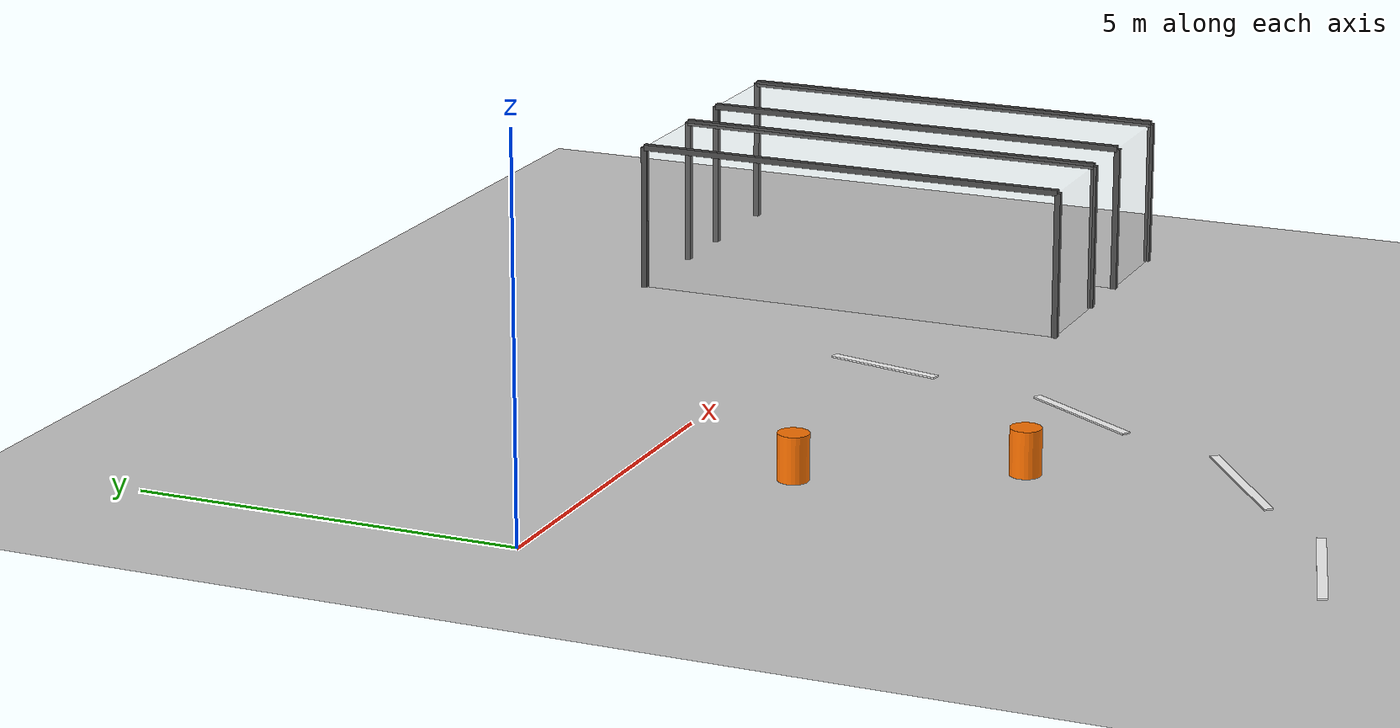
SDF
<sdf version="1.8">
 <world name="pioneer_world">
  <model name="ground_plane">
   <static>true</static>
   <link name="link">
    <collision name="collision"><geometry><plane><normal>0 0 1</normal></plane></geometry></collision>
    <visual name="visual">
     <geometry><plane><normal>0 0 1</normal><size>100 100</size></plane></geometry>
     <material>
      <ambient>0.8 0.8 0.8 1</ambient>
      <diffuse>0.8 0.8 0.8 1</diffuse>
      <specular>0.8 0.8 0.8 1</specular>
     </material>
    </visual>
   </link>
  </model>
  <model name="oval_line_6">
   <static>true</static>
   <pose>8.1 -1.4 0.02 0 0 -1.79</pose>
   <link name="link">
    <visual name="visual">
     <geometry><box><size>1.6 0.12 0.02</size></box></geometry>
     <material><ambient>1 1 1 1</ambient><diffuse>1 1 1 1</diffuse><specular>0.2 0.2 0.2 1</specular></material>
    </visual>
   </link>
  </model>
  <model name="oval_line_7">
   <static>true</static>
   <pose>7.2 -4.4 0.02 0 0 -2.14</pose>
   <link name="link">
    <visual name="visual">
     <geometry><box><size>1.8 0.12 0.02</size></box></geometry>
     <material><ambient>1 1 1 1</ambient><diffuse>1 1 1 1</diffuse><specular>0.2 0.2 0.2 1</specular></material>
    </visual>
   </link>
  </model>
  <model name="oval_line_8">
   <static>true</static>
   <pose>5.5 -7.0 0.02 0 0 -2.52</pose>
   <link name="link">
    <visual name="visual">
     <geometry><box><size>2.0 0.12 0.02</size></box></geometry>
     <material><ambient>1 1 1 1</ambient><diffuse>1 1 1 1</diffuse><specular>0.2 0.2 0.2 1</specular></material>
    </visual>
   </link>
  </model>
  <model name="oval_line_9">
   <static>true</static>
   <pose>3.0 -8.7 0.02 0 0 -2.86</pose>
   <link name="link">
    <visual name="visual">
     <geometry><box><size>2.0 0.12 0.02</size></box></geometry>
     <material><ambient>1 1 1 1</ambient><diffuse>1 1 1 1</diffuse><specular>0.2 0.2 0.2 1</specular></material>
    </visual>
   </link>
  </model>
  <model name="cone_3">
   <static>true</static>
   <pose>3.5 -2 0.3 0 0 0</pose>
   <link name="link">
    <visual name="visual">
     <geometry><cylinder><radius>0.2</radius><length>0.6</length></cylinder></geometry>
     <material>
      <ambient>1.0 0.45 0.0 1</ambient>
      <diffuse>1.0 0.45 0.0 1</diffuse>
      <specular>0.2 0.2 0.2 1</specular>
     </material>
    </visual>
    <collision name="collision">
     <geometry><cylinder><radius>0.2</radius><length>0.6</length></cylinder></geometry>
    </collision>
   </link>
  </model>
  <model name="cone_9">
   <static>true</static>
   <pose>4.8 -4.5 0.3 0 0 0</pose>
   <link name="link">
    <visual name="visual">
     <geometry><cylinder><radius>0.2</radius><length>0.6</length></cylinder></geometry>
     <material>
      <ambient>1.0 0.45 0.0 1</ambient>
      <diffuse>1.0 0.45 0.0 1</diffuse>
      <specular>0.2 0.2 0.2 1</specular>
     </material>
    </visual>
    <collision name="collision">
     <geometry><cylinder><radius>0.2</radius><length>0.6</length></cylinder></geometry>
    </collision>
   </link>
  </model>
  <model name="batting_cage_1">
   <static>true</static>
   <pose>11 0 0 0 0 0</pose>
   <link name="link">
    <visual name="lane_visual">
     <pose>0 0 1.0 0 0 0</pose>
     <geometry><box><size>1.5 6.0 2.0</size></box></geometry>
     <material><ambient>0.7 0.7 0.7 0.15</ambient><diffuse>0.7 0.7 0.7 0.15</diffuse></material>
    </visual>
    <visual name="post_front_left">
     <pose>-0.75 3.0 1.0 0 0 0</pose>
     <geometry><box><size>0.08 0.08 2.0</size></box></geometry>
     <material><ambient>0.3 0.3 0.3 1</ambient><diffuse>0.3 0.3 0.3 1</diffuse></material>
    </visual>
    <visual name="post_front_right">
     <pose>0.75 3.0 1.0 0 0 0</pose>
     <geometry><box><size>0.08 0.08 2.0</size></box></geometry>
     <material><ambient>0.3 0.3 0.3 1</ambient><diffuse>0.3 0.3 0.3 1</diffuse></material>
    </visual>
    <visual name="post_back_left">
     <pose>-0.75 -3.0 1.0 0 0 0</pose>
     <geometry><box><size>0.08 0.08 2.0</size></box></geometry>
     <material><ambient>0.3 0.3 0.3 1</ambient><diffuse>0.3 0.3 0.3 1</diffuse></material>
    </visual>
    <visual name="post_back_right">
     <pose>0.75 -3.0 1.0 0 0 0</pose>
     <geometry><box><size>0.08 0.08 2.0</size></box></geometry>
     <material><ambient>0.3 0.3 0.3 1</ambient><diffuse>0.3 0.3 0.3 1</diffuse></material>
    </visual>
    <visual name="top_bar_left">
     <pose>-0.75 0 2.0 0 0 0</pose>
     <geometry><box><size>0.08 6.0 0.08</size></box></geometry>
     <material><ambient>0.3 0.3 0.3 1</ambient><diffuse>0.3 0.3 0.3 1</diffuse></material>
    </visual>
    <visual name="top_bar_right">
     <pose>0.75 0 2.0 0 0 0</pose>
     <geometry><box><size>0.08 6.0 0.08</size></box></geometry>
     <material><ambient>0.3 0.3 0.3 1</ambient><diffuse>0.3 0.3 0.3 1</diffuse></material>
    </visual>
    <collision name="collision">
     <pose>0 0 1.0 0 0 0</pose>
     <geometry><box><size>1.5 6.0 2.0</size></box></geometry>
    </collision>
   </link>
  </model>
  <model name="batting_cage_2">
   <static>true</static>
   <pose>13.5 0 0 0 0 0</pose>
   <link name="link">
    <visual name="lane_visual">
     <pose>0 0 1.0 0 0 0</pose>
     <geometry><box><size>1.5 6.0 2.0</size></box></geometry>
     <material><ambient>0.7 0.7 0.7 0.15</ambient><diffuse>0.7 0.7 0.7 0.15</diffuse></material>
    </visual>
    <visual name="post_front_left">
     <pose>-0.75 3.0 1.0 0 0 0</pose>
     <geometry><box><size>0.08 0.08 2.0</size></box></geometry>
     <material><ambient>0.3 0.3 0.3 1</ambient><diffuse>0.3 0.3 0.3 1</diffuse></material>
    </visual>
    <visual name="post_front_right">
     <pose>0.75 3.0 1.0 0 0 0</pose>
     <geometry><box><size>0.08 0.08 2.0</size></box></geometry>
     <material><ambient>0.3 0.3 0.3 1</ambient><diffuse>0.3 0.3 0.3 1</diffuse></material>
    </visual>
    <visual name="post_back_left">
     <pose>-0.75 -3.0 1.0 0 0 0</pose>
     <geometry><box><size>0.08 0.08 2.0</size></box></geometry>
     <material><ambient>0.3 0.3 0.3 1</ambient><diffuse>0.3 0.3 0.3 1</diffuse></material>
    </visual>
    <visual name="post_back_right">
     <pose>0.75 -3.0 1.0 0 0 0</pose>
     <geometry><box><size>0.08 0.08 2.0</size></box></geometry>
     <material><ambient>0.3 0.3 0.3 1</ambient><diffuse>0.3 0.3 0.3 1</diffuse></material>
    </visual>
    <visual name="top_bar_left">
     <pose>-0.75 0 2.0 0 0 0</pose>
     <geometry><box><size>0.08 6.0 0.08</size></box></geometry>
     <material><ambient>0.3 0.3 0.3 1</ambient><diffuse>0.3 0.3 0.3 1</diffuse></material>
    </visual>
    <visual name="top_bar_right">
     <pose>0.75 0 2.0 0 0 0</pose>
     <geometry><box><size>0.08 6.0 0.08</size></box></geometry>
     <material><ambient>0.3 0.3 0.3 1</ambient><diffuse>0.3 0.3 0.3 1</diffuse></material>
    </visual>
    <collision name="collision">
     <pose>0 0 1.0 0 0 0</pose>
     <geometry><box><size>1.5 6.0 2.0</size></box></geometry>
    </collision>
   </link>
  </model>
 </world>
</sdf>
